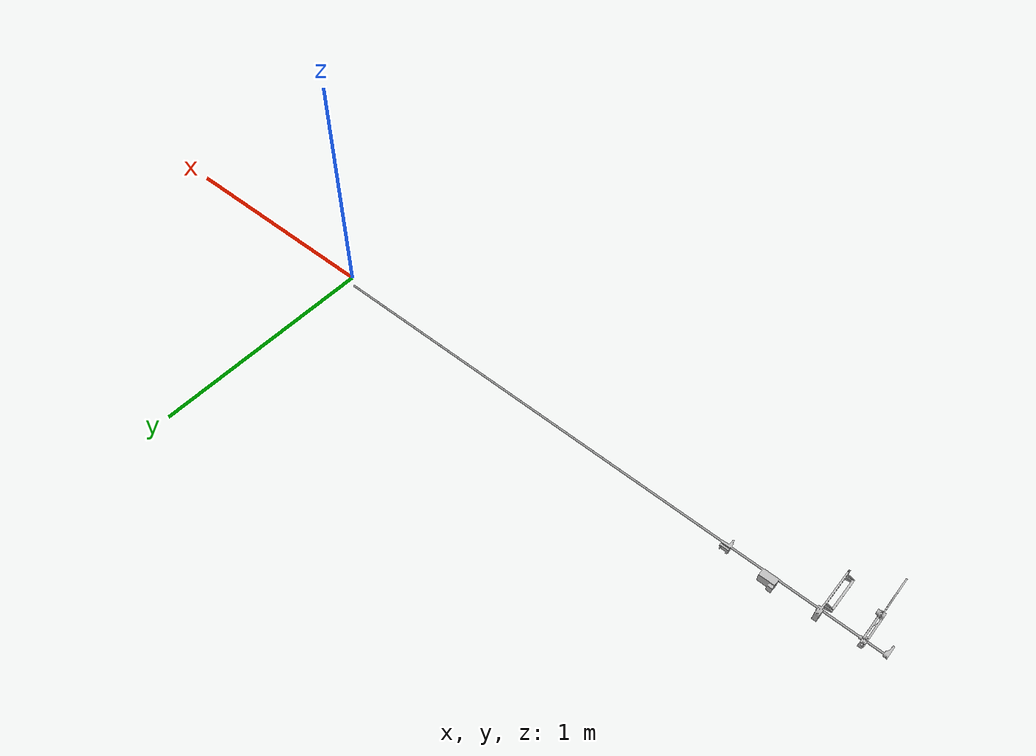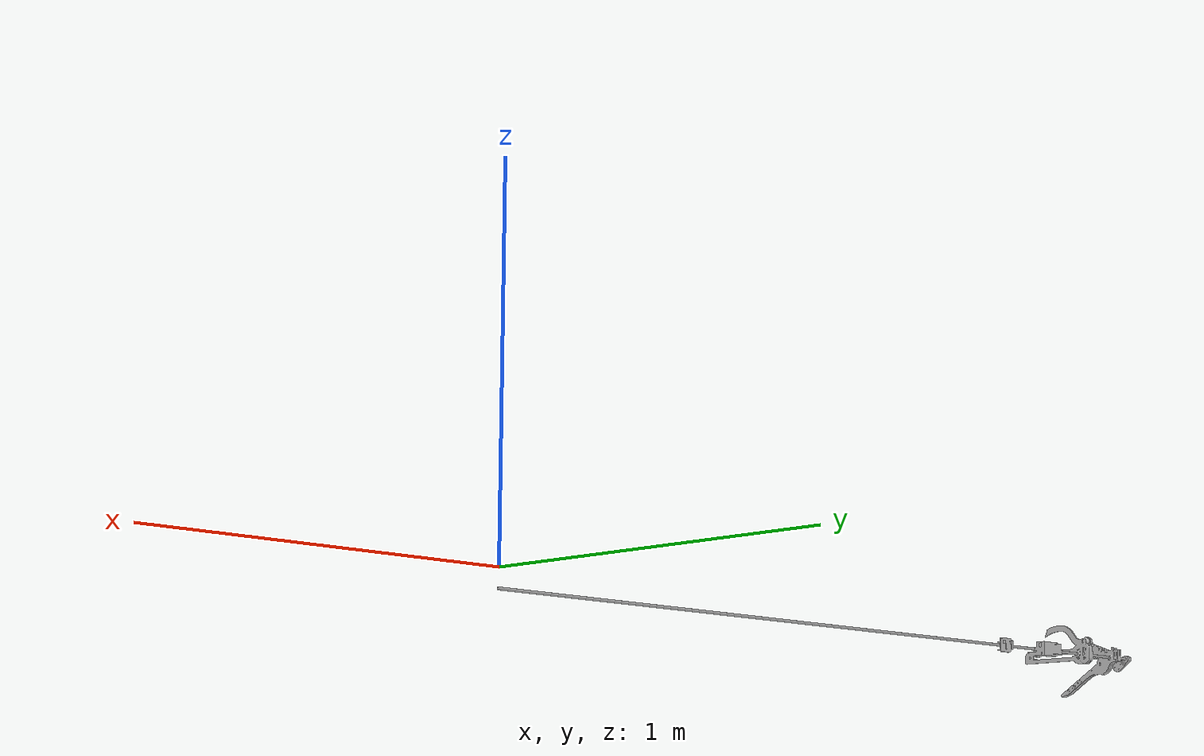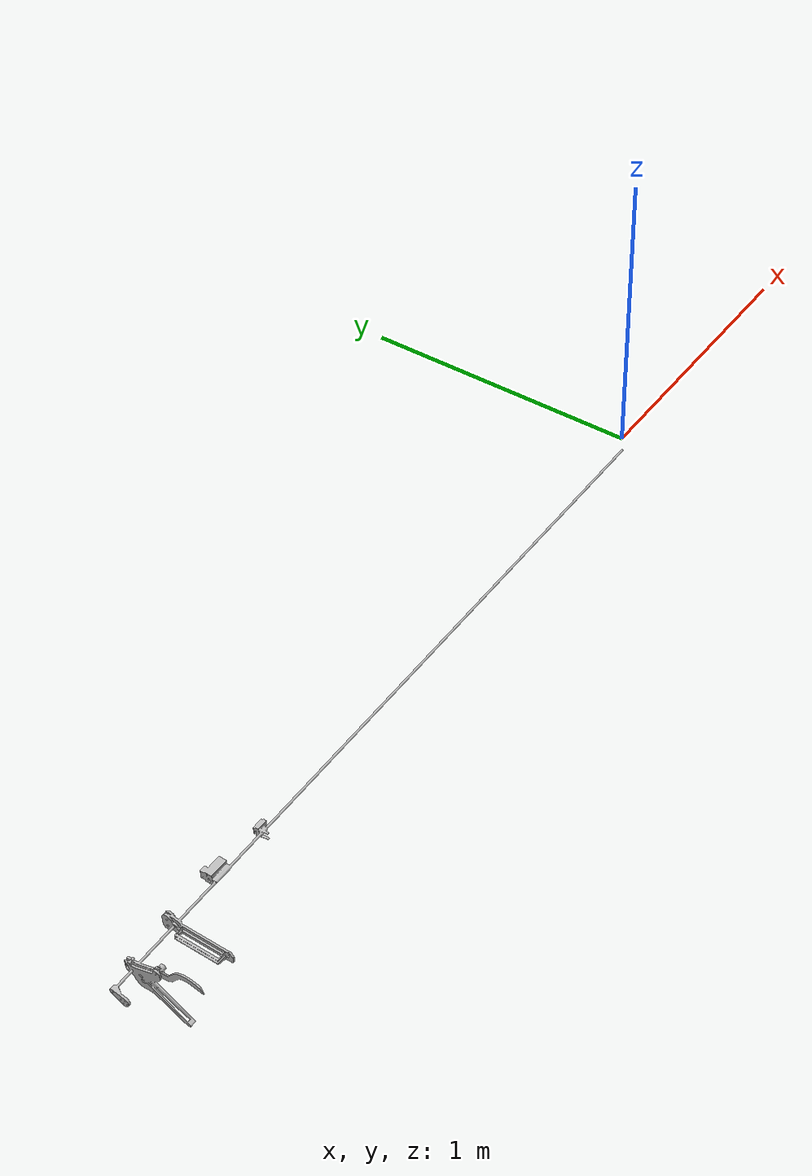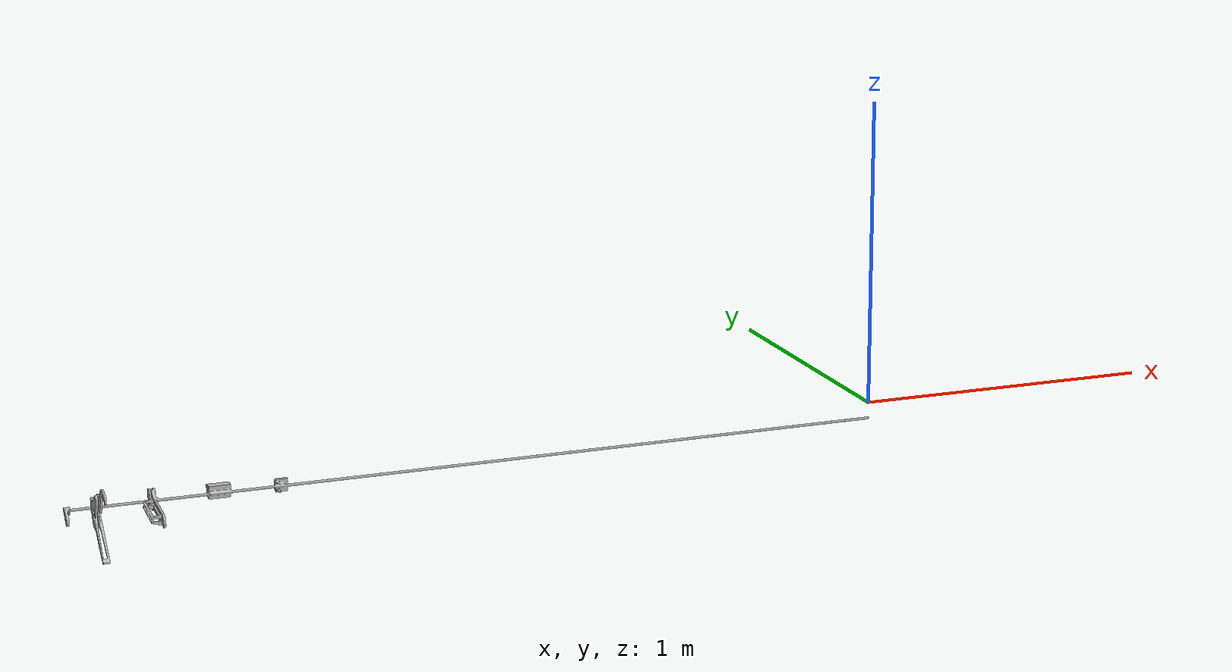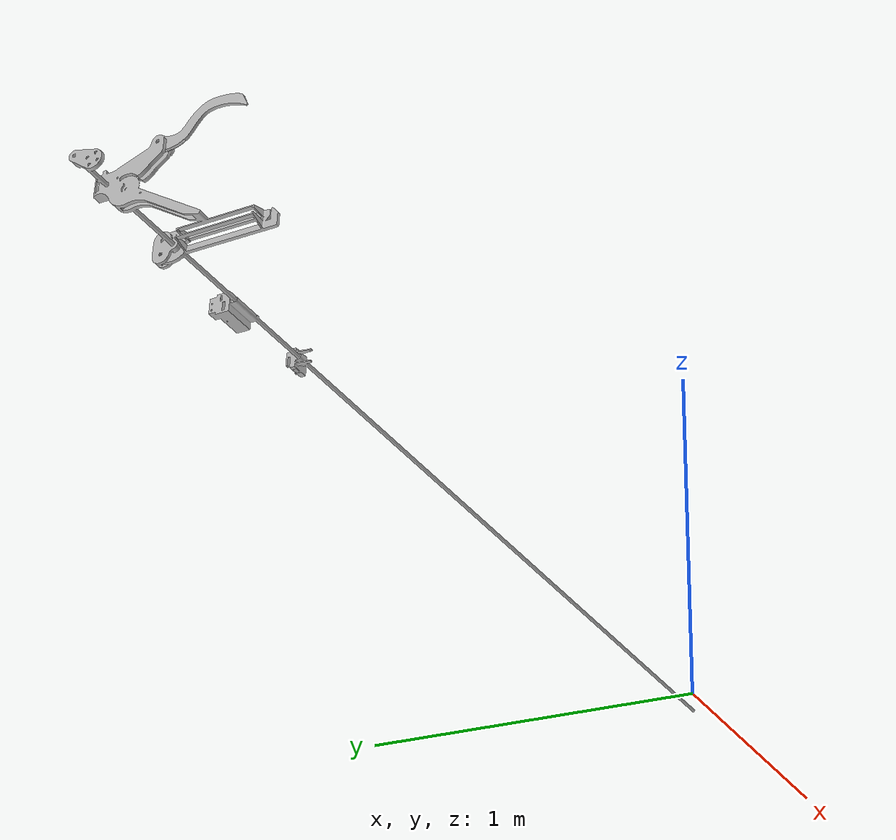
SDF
<?xml version="1.0" ?>
<sdf version="1.5">
  <model name="deleaves_clamp">
    <pose>0 0 0 0 0 0</pose>
    <static>false</static>
    <link name="link">
      <inertial>
        <mass>0.535</mass>
        <inertia>
          <ixx>0.000265</ixx>
          <ixy>0</ixy>
          <ixz>0</ixz>
          <iyy>0.257</iyy>
          <iyz>0</iyz>
          <izz>0.257</izz>
        </inertia>
	<pose>-1.3 0 -0.05 0 0 0</pose>
      </inertial>

      <collision name="collision">
        <geometry>
          <cylinder>
              <radius>0.005</radius>
              <length>2.6</length>
          </cylinder>
        </geometry>
	<surface>
          <contact>
            <ode>
              <max_vel>0.1</max_vel>
              <min_depth>0.001</min_depth>
            </ode>
          </contact>
        </surface>
        <pose>-1.3 0 -0.05 0 1.5708 0</pose>
      </collision>

      <visual name="visual">
        <pose>-1.3 -0.1 -0.05 0 1.5708 0</pose>
        <geometry>
          <mesh>
            <uri>model://deleaves_clamp/meshes/deleaves.obj</uri>
            <scale>1 1 1</scale>
          </mesh>

	</geometry>
      </visual>
    </link>

  </model>
</sdf>
